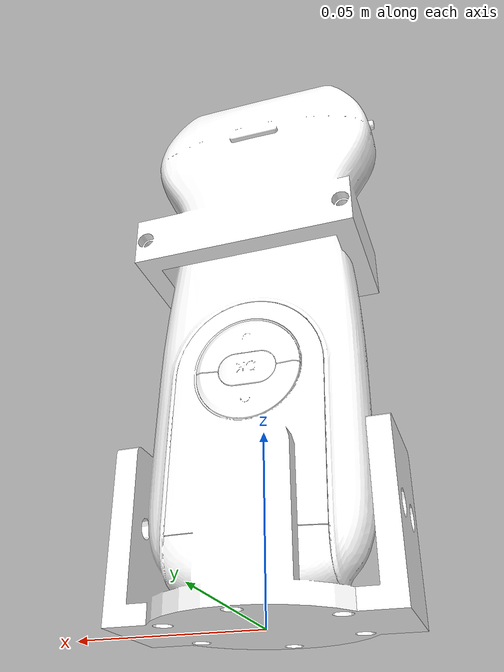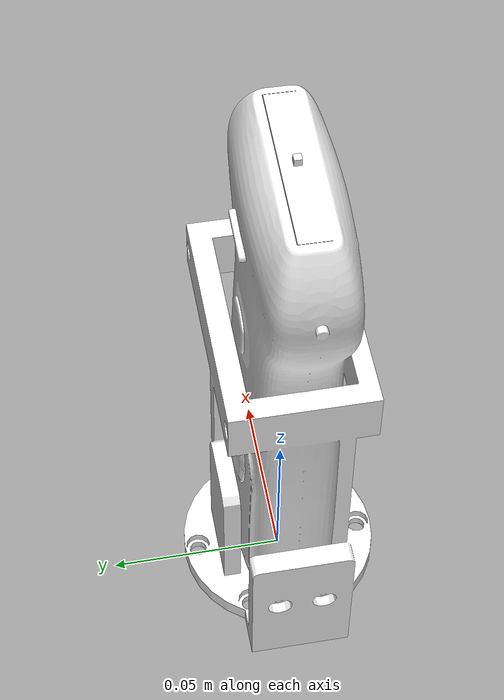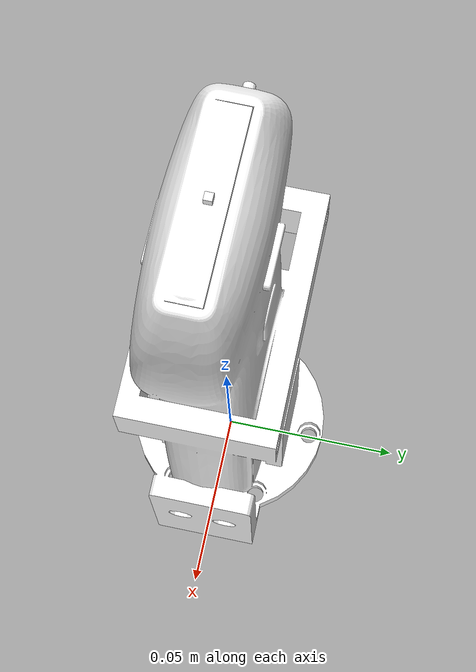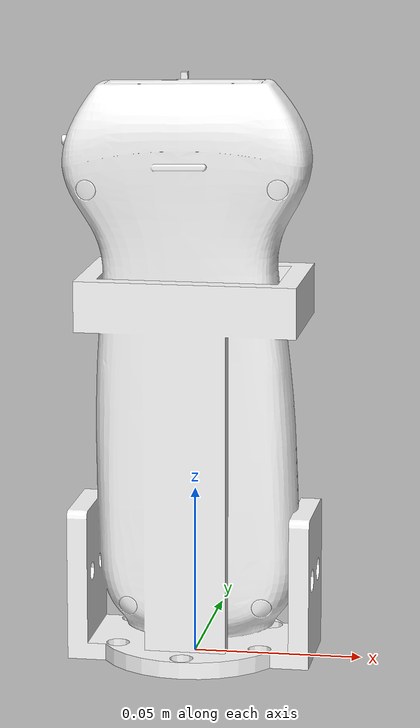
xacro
<?xml version="1.0" encoding="utf-8"?>
<robot xmlns:xacro="http://www.ros.org/wiki/xacro" name="conect_description">

    <!-- 定义工具基座链接的参数 -->
    <xacro:property name="tool_base_link_inertia_xyz" value="-0.000222405740733957 -0.000481035601624011 0.0689230138059816" />
    <xacro:property name="tool_base_link_inertia_rpy" value="0 0 0" />
    <xacro:property name="tool_base_link_mass" value="0.116045321966342" />
    <xacro:property name="tool_base_link_ixx" value="0.000164904816177466" />
    <xacro:property name="tool_base_link_ixy" value="2.02488130216797E-07" />
    <xacro:property name="tool_base_link_ixz" value="1.50577434202425E-06" />
    <xacro:property name="tool_base_link_iyy" value="0.000202510715131649" />
    <xacro:property name="tool_base_link_iyz" value="8.60308417309894E-06" />
    <xacro:property name="tool_base_link_izz" value="5.69762169244189E-05" />
    <xacro:property name="tool_base_link_mesh" value="package://conect_description/meshes/tool_base_link.STL" />

    <!-- 定义工具末端链接的参数 -->
    <xacro:property name="tool_end_link_inertia_xyz" value="8.79459612690391E-05 -8.1632458962142E-05 -0.00099852848210466" />
    <xacro:property name="tool_end_link_inertia_rpy" value="0 0 0" />
    <xacro:property name="tool_end_link_mass" value="8.00000000000001E-06" />
    <xacro:property name="tool_end_link_ixx" value="5.33333333333336E-12" />
    <xacro:property name="tool_end_link_ixy" value="1.46216601377879E-27" />
    <xacro:property name="tool_end_link_ixz" value="1.41756869850412E-27" />
    <xacro:property name="tool_end_link_iyy" value="5.33333333333336E-12" />
    <xacro:property name="tool_end_link_iyz" value="-3.92889708655019E-28" />
    <xacro:property name="tool_end_link_izz" value="5.33333333333334E-12" />
    <xacro:property name="tool_end_link_mesh" value="package://conect_description/meshes/tool_end_link.STL" />

    <!-- 定义连接关节的参数 -->
    <xacro:property name="conect_joint_xyz" value="-0.00272826464929472 -0.00102217054955704 0.174" />
    <xacro:property name="conect_joint_rpy" value="0 0 0" />
    <xacro:property name="conect_joint_axis" value="0 0 0" />

    <!-- 定义链接模板宏 -->
    <xacro:macro name="link_template" params="name inertia_xyz inertia_rpy mass ixx ixy ixz iyy iyz izz mesh_file">
        <link name="${name}">
            <inertial>
                <origin xyz="${inertia_xyz}" rpy="${inertia_rpy}" />
                <mass value="${mass}" />
                <inertia ixx="${ixx}" ixy="${ixy}" ixz="${ixz}" iyy="${iyy}" iyz="${iyz}" izz="${izz}" />
            </inertial>
            <visual>
                <origin xyz="0 0 0" rpy="0 0 0" />
                <geometry>
                    <mesh filename="${mesh_file}" />
                </geometry>
                <material name="">
                    <color rgba="1 1 1 1" />
                </material>
            </visual>
            <collision>
                <origin xyz="0 0 0" rpy="0 0 0" />
                <geometry>
                    <mesh filename="${mesh_file}" />
                </geometry>
            </collision>
        </link>
    </xacro:macro>

    <!-- 定义固定关节模板宏 -->
    <xacro:macro name="fixed_joint_template" params="name parent child origin_xyz origin_rpy axis_xyz">
        <joint name="${name}" type="fixed">
            <origin xyz="${origin_xyz}" rpy="${origin_rpy}" />
            <parent link="${parent}" />
            <child link="${child}" />
            <axis xyz="${axis_xyz}" />
        </joint>
    </xacro:macro>

    <!-- 使用宏创建工具基座链接 -->
    <xacro:link_template
        name="tool_base_link"
        inertia_xyz="${tool_base_link_inertia_xyz}"
        inertia_rpy="${tool_base_link_inertia_rpy}"
        mass="${tool_base_link_mass}"
        ixx="${tool_base_link_ixx}"
        ixy="${tool_base_link_ixy}"
        ixz="${tool_base_link_ixz}"
        iyy="${tool_base_link_iyy}"
        iyz="${tool_base_link_iyz}"
        izz="${tool_base_link_izz}"
        mesh_file="${tool_base_link_mesh}" />

    <!-- 使用宏创建工具末端链接 -->
    <xacro:link_template
        name="tool_end_link"
        inertia_xyz="${tool_end_link_inertia_xyz}"
        inertia_rpy="${tool_end_link_inertia_rpy}"
        mass="${tool_end_link_mass}"
        ixx="${tool_end_link_ixx}"
        ixy="${tool_end_link_ixy}"
        ixz="${tool_end_link_ixz}"
        iyy="${tool_end_link_iyy}"
        iyz="${tool_end_link_iyz}"
        izz="${tool_end_link_izz}"
        mesh_file="${tool_end_link_mesh}" />

    <!-- 使用宏创建连接关节 -->
    <xacro:fixed_joint_template
        name="conect"
        parent="tool_base_link"
        child="tool_end_link"
        origin_xyz="${conect_joint_xyz}"
        origin_rpy="${conect_joint_rpy}"
        axis_xyz="${conect_joint_axis}" />

</robot>
